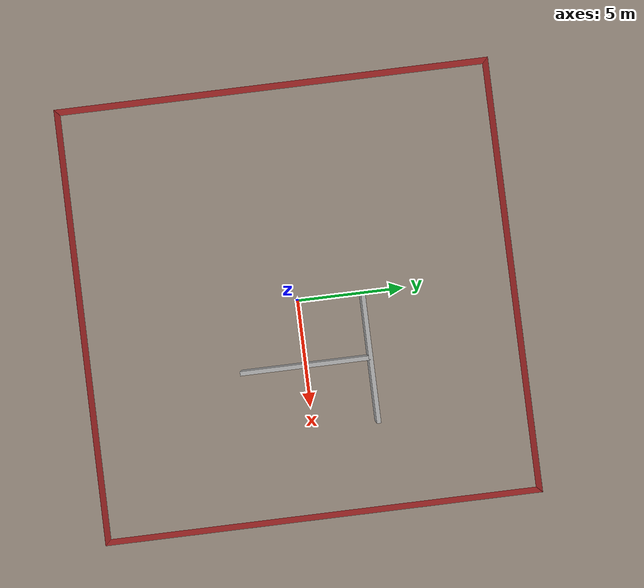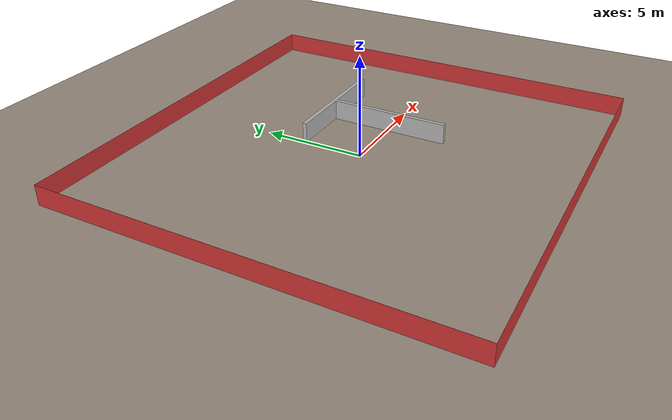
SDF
<?xml version="1.0" ?>
<sdf version="1.8">
    <world name="base_world">
        <physics name="default_physics" type="ode">
            <max_step_size>0.001</max_step_size>
            <real_time_factor>1</real_time_factor>
        </physics>
        <!-- Plugins -->
        <!-- Physics System Plugin -->
        <plugin
            filename="gz-sim-physics-system"
            name="gz::sim::systems::Physics">
        </plugin>
        <!-- Scene Broadcaster Plugin -->
        <plugin
            filename="gz-sim-scene-broadcaster-system"
            name="gz::sim::systems::SceneBroadcaster">
        </plugin>

        <!-- Sun Light -->
        <light type="directional" name="sun">
            <cast_shadows>true</cast_shadows>
            <pose>0 0 10 0 0 0</pose>
            <diffuse>0.8 0.8 0.8 1</diffuse>
            <specular>0.2 0.2 0.2 1</specular>
            <attenuation>
                <range>1000</range>
                <constant>0.9</constant>
                <linear>0.01</linear>
                <quadratic>0.001</quadratic>
            </attenuation>
            <direction>-0.5 0.1 -0.9</direction>
        </light>

        <model name="ground_plane">
            <static>true</static>
            <link name="link">
                <collision name="collision">
                <geometry>
                    <plane>
                        <normal>0 0 1</normal>
                    </plane>
                </geometry>
                </collision>
                <visual name="visual">
                <geometry>
                    <plane>
                    <normal>0 0 1</normal>
                    <size>20 20</size>
                    </plane>
                </geometry>
                <material>
                    <ambient>0.5 0.5 0.5 1</ambient>
                    <diffuse>0.6 0.55 0.5 1</diffuse>
                    <specular>0.2 0.2 0.2 1</specular>
                </material>
                </visual>
            </link>
        </model>

        <model name="border_north_plane">
            <static>true</static>
            <pose>10.0 0 0.5 0 0 0</pose>
            <link name="link">
            <collision name="collision">
                <geometry>
                    <plane>
                        <normal>-1 0 0</normal>
                    </plane>
                </geometry>
            </collision>
            <visual name="visual">
                <geometry>
                    <plane>
                        <normal>-1 0 0</normal>
                        <size>1 20</size>
                    </plane>
                </geometry>
                <material>
                    <ambient>0.8 0.2 0.2 1</ambient>
                    <diffuse>0.8 0.2 0.2 1</diffuse>
                    <specular>0.8 0.2 0.2 1</specular>
                </material>
            </visual>
            </link>
        </model>

        <model name="border_south_plane">
            <static>true</static>
            <pose>-10.0 0 0.5 0 0 0</pose>
            <link name="link">
            <collision name="collision">
                <geometry>
                    <plane>
                        <normal>1 0 0</normal>
                    </plane>
                </geometry>
            </collision>
            <visual name="visual">
                <geometry>
                    <plane>
                        <normal>1 0 0</normal>
                        <size>1 20</size>
                    </plane>
                </geometry>
                <material>
                    <ambient>0.8 0.2 0.2 1</ambient>
                    <diffuse>0.8 0.2 0.2 1</diffuse>
                    <specular>0.8 0.2 0.2 1</specular>
                </material>
            </visual>
            </link>
        </model>

        <model name="border_east_plane">
            <static>true</static>
            <pose>0 10.0 0.5 0 0 0</pose>
            <link name="link">
            <collision name="collision">
                <geometry>
                    <plane>
                        <normal>0 -1 0</normal>
                    </plane>
                </geometry>
            </collision>
            <visual name="visual">
                <geometry>
                    <plane>
                        <normal>0 -1 0</normal>
                        <size>20 1</size>
                    </plane>
                </geometry>
                <material>
                    <ambient>0.8 0.2 0.2 1</ambient>
                    <diffuse>0.8 0.2 0.2 1</diffuse>
                    <specular>0.8 0.2 0.2 1</specular>
                </material>
            </visual>
            </link>
        </model>

        <model name="border_west_plane">
            <static>true</static>
            <pose>0 -10.0 0.5 0 0 0</pose>
            <link name="link">
            <collision name="collision">
                <geometry>
                    <plane>
                        <normal>0 1 0</normal>
                    </plane>
                </geometry>
            </collision>
            <visual name="visual">
                <geometry>
                    <plane>
                        <normal>0 1 0</normal>
                        <size>20 1</size>
                    </plane>
                </geometry>
                <material>
                    <ambient>0.8 0.2 0.2 1</ambient>
                    <diffuse>0.8 0.2 0.2 1</diffuse>
                    <specular>0.8 0.2 0.2 1</specular>
                </material>
            </visual>
            </link>
        </model>

        <model name="wall_1">
            <static>true</static>
            <pose>3 0 0.5 0 0 0</pose>
            <link name="link">
                <collision name="collision">
                    <geometry>
                        <box>
                            <size>0.2 6 1</size>
                        </box>
                    </geometry>
                </collision>
                <visual name="visual">
                    <geometry>
                        <box>
                            <size>0.2 6 1</size>
                        </box>
                    </geometry>
                    <material>
                        <ambient>0.7 0.7 0.7 1</ambient>
                        <diffuse>0.7 0.7 0.7 1</diffuse>
                        <specular>0.2 0.2 0.2 1</specular>
                    </material>
                </visual>
            </link>
        </model>

        <model name="wall_2">
            <static>true</static>
            <pose>3 3 0.5 0 0 1.5708</pose>
            <link name="link">
                <collision name="collision">
                    <geometry>
                        <box>
                            <size>0.2 6 1</size>
                        </box>
                    </geometry>
                </collision>
                <visual name="visual">
                    <geometry>
                        <box>
                            <size>0.2 6 1</size>
                        </box>
                    </geometry>
                    <material>
                        <ambient>0.7 0.7 0.7 1</ambient>
                        <diffuse>0.7 0.7 0.7 1</diffuse>
                        <specular>0.2 0.2 0.2 1</specular>
                    </material>
                </visual>
            </link>
        </model>
    </world>
</sdf>
